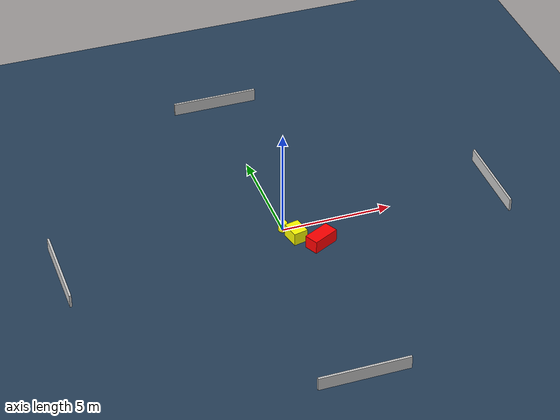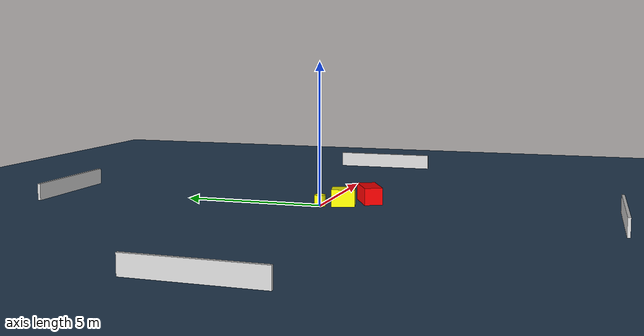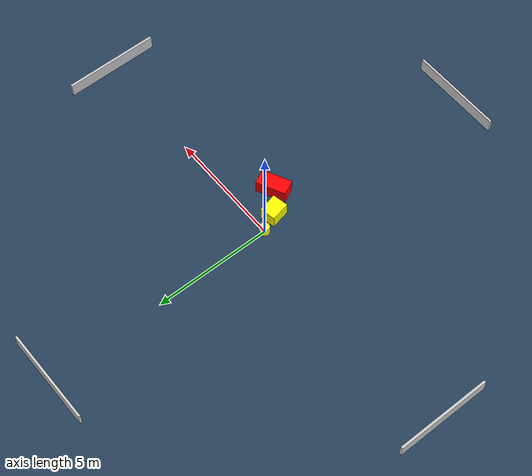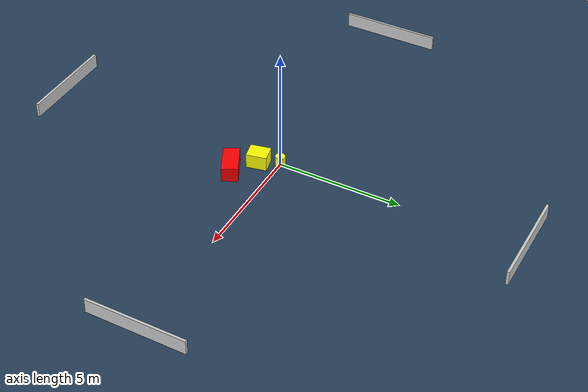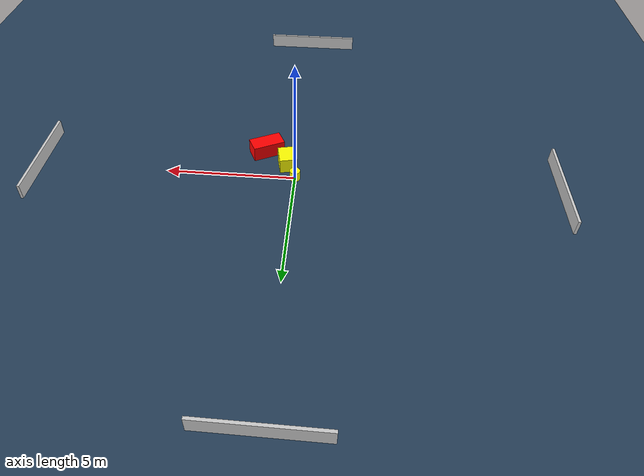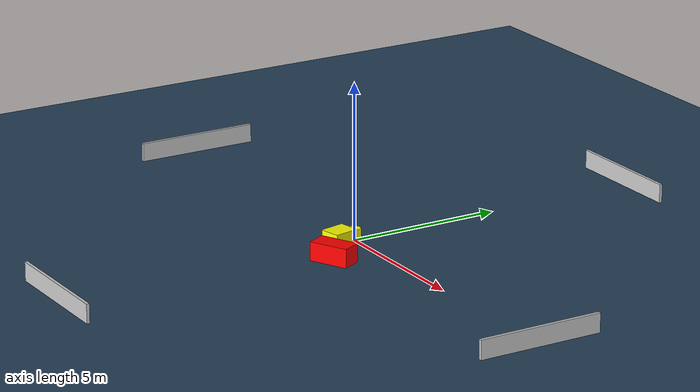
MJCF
<?xml version="1.0" ?>
<mujoco model="generated_environment">
  <option timestep="0.01" integrator="RK4" cone="elliptic"/>
  <default>
    <geom density="1"/>
  </default>
  <asset>
    <texture builtin="gradient" height="3072" name="skybox" rgb1="0.3 0.5 0.7" rgb2="0 0 0" type="skybox" width="512"/>
    <texture builtin="checker" height="300" name="groundplane" rgb1="0.2 0.3 0.4" rgb2="0.1 0.2 0.3" type="2d" width="300"/>
    <material name="groundplane" reflectance="0.2" texrepeat="5 5" texture="groundplane"/>
  </asset>
  <worldbody>
    <light dir="0 0 -1" directional="true" pos="0 0 1.5"/>
    <geom condim="3" friction="0.5 0.005 0.001" material="groundplane" name="floor" pos="0 0 0" size="0 0 0.05" type="plane"/>
    <body name="walls">
      <geom name="wall_1" condim="4" pos="-10.0 0.0 0.3" rgba="0.800000011920929 0.800000011920929 0.800000011920929 1.0" size="0.05 2.0 0.3" type="box"/>
      <geom name="wall_2" condim="4" pos="10.0 0.0 0.3" rgba="0.800000011920929 0.800000011920929 0.800000011920929 1.0" size="0.05 2.0 0.3" type="box"/>
      <geom name="wall_3" condim="4" pos="0.0 -10.0 0.3" rgba="0.800000011920929 0.800000011920929 0.800000011920929 1.0" size="2.0 0.05 0.3" type="box"/>
      <geom name="wall_4" condim="4" pos="0.0 10.0 0.3" rgba="0.800000011920929 0.800000011920929 0.800000011920929 1.0" size="2.0 0.05 0.3" type="box"/>
    </body>
    <body name="robot">
      <joint name="joint_x" type="slide" pos="0 0 0" axis="1 0 0"/>
      <joint name="joint_y" type="slide" pos="0 0 0" axis="0 1 0"/>
      <geom name="robot" type="cylinder" pos="0.0 0.0 0.2" size="0.2 0.2 0.0" mass="5.0" friction="1.0 0.005 0.0001" condim="4" rgba="1.0 1.0 0.0 1.0"/>
    </body>
    <body name="obstacle_1_movable">
      <geom name="obstacle_1_movable" condim="4" pos="0.3661997700632811 -0.7470261770065906 0.3" euler="0 0 12.201641595957998" friction="0.0 0.005 0.001" rgba="1.0 1.0 0.0 1.0" size="0.3320283724885811 0.4078221613054087 0.3" type="box" mass="0.1"/>
      <joint type="free"/>
    </body>
    <body name="obstacle_2_static">
      <geom name="obstacle_2_static" condim="4" pos="1.2537532120859063 -1.4674241596288917 0.3" euler="0 0 206.4147789734529" friction="0.0 0.005 0.001" rgba="1.0 0.0 0.0 1.0" size="0.6325625921410798 0.32465311778406486 0.3" type="box"/>
    </body>
  </worldbody>
  <actuator>
    <motor name="actuator_x" joint="joint_x" gear="1" ctrlrange="-1 1"/>
    <motor name="actuator_y" joint="joint_y" gear="1" ctrlrange="-1 1"/>
  </actuator>
</mujoco>
